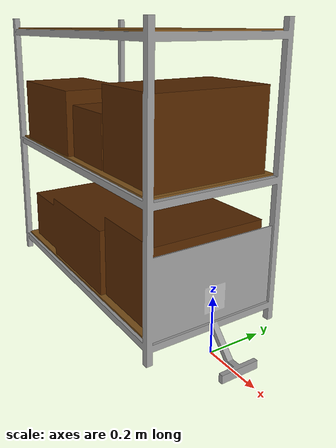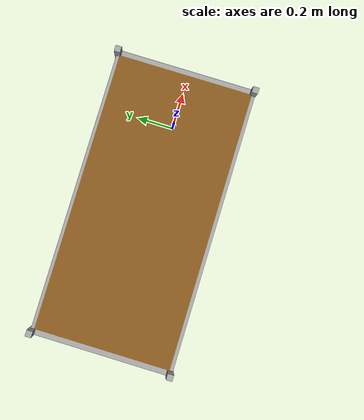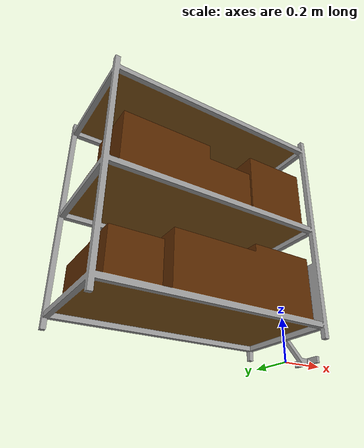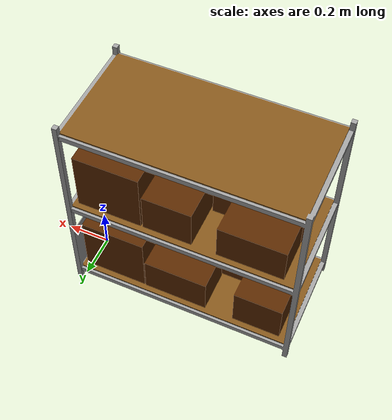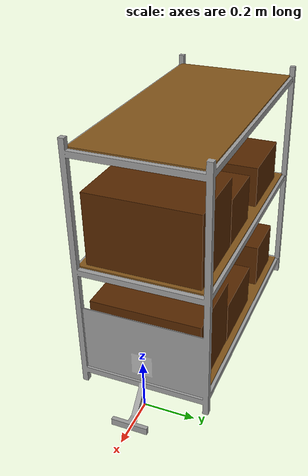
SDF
<?xml version="1.0" ?>
<sdf version="1.5">
  <model name="exp_cart">
    <static>false</static>
    <link name="link">
      <collision name="box">
        <pose>0 0 0.5 0 0 0</pose>
        <geometry>
          <box>
            <size>1.0 3.2 1.0</size>
          </box>
        </geometry>
      </collision>
      <visual name="visual">
        <pose>0 0 0 0 0 -1.5708</pose>
        <geometry>
          <mesh>
            <uri>model://cart_model_2/meshes/cart_base.dae</uri>
          </mesh>
        </geometry>
      </visual>
      <inertial>
        <mass>30.0</mass>
        <inertia>
          <ixx>2.0</ixx><iyy>2.0</iyy><izz>2.0</izz>
          <ixy>0.0</ixy><ixz>0.0</ixz><iyz>0.0</iyz>
        </inertia>
      </inertial>
    </link>
  </model>
</sdf>
